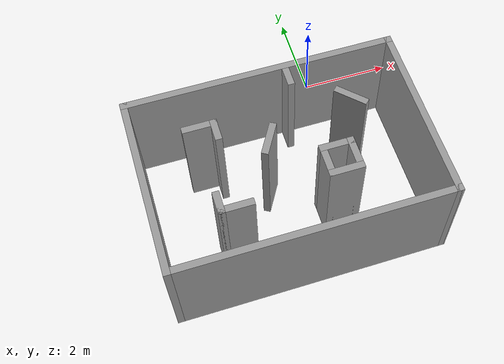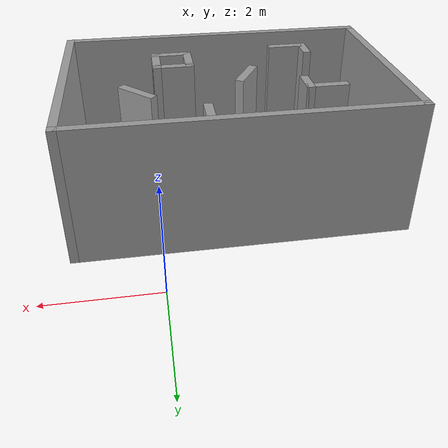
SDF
<?xml version='1.0'?>
<sdf version='1.7'>
  <model name='easy_ground'>
    <pose>-1.445 -2.4675 0 0 -0 0</pose>
    <link name='Wall_0'>
      <collision name='Wall_0_Collision'>
        <geometry>
          <box>
            <size>4 0.15 2.5</size>
          </box>
        </geometry>
        <pose>0 0 1.25 0 -0 0</pose>
      </collision>
      <visual name='Wall_0_Visual'>
        <pose>0 0 1.25 0 -0 0</pose>
        <geometry>
          <box>
            <size>4 0.15 2.5</size>
          </box>
        </geometry>
        <material>
          <script>
            <uri>file://media/materials/scripts/gazebo.material</uri>
            <name>Gazebo/Grey</name>
          </script>
          <ambient>1 1 1 1</ambient>
        </material>
        <meta>
          <layer>0</layer>
        </meta>
      </visual>
      <pose>-2.925 -0.4675 0 0 -0 -1.5708</pose>
    </link>
    <link name='Wall_1'>
      <collision name='Wall_1_Collision'>
        <geometry>
          <box>
            <size>6 0.15 2.5</size>
          </box>
        </geometry>
        <pose>0 0 1.25 0 -0 0</pose>
      </collision>
      <visual name='Wall_1_Visual'>
        <pose>0 0 1.25 0 -0 0</pose>
        <geometry>
          <box>
            <size>6 0.15 2.5</size>
          </box>
        </geometry>
        <material>
          <script>
            <uri>file://media/materials/scripts/gazebo.material</uri>
            <name>Gazebo/Grey</name>
          </script>
          <ambient>1 1 1 1</ambient>
        </material>
        <meta>
          <layer>0</layer>
        </meta>
      </visual>
      <pose>-0 -2.3925 0 0 -0 0</pose>
    </link>
    <link name='Wall_2'>
      <collision name='Wall_2_Collision'>
        <geometry>
          <box>
            <size>4 0.15 2.5</size>
          </box>
        </geometry>
        <pose>0 0 1.25 0 -0 0</pose>
      </collision>
      <visual name='Wall_2_Visual'>
        <pose>0 0 1.25 0 -0 0</pose>
        <geometry>
          <box>
            <size>4 0.15 2.5</size>
          </box>
        </geometry>
        <material>
          <script>
            <uri>file://media/materials/scripts/gazebo.material</uri>
            <name>Gazebo/Grey</name>
          </script>
          <ambient>1 1 1 1</ambient>
        </material>
        <meta>
          <layer>0</layer>
        </meta>
      </visual>
      <pose>2.925 -0.4675 0 0 -0 1.5708</pose>
    </link>
    <link name='Wall_21'>
      <collision name='Wall_21_Collision'>
        <geometry>
          <box>
            <size>0.5 0.15 2.5</size>
          </box>
        </geometry>
        <pose>0 0 1.25 0 -0 0</pose>
      </collision>
      <visual name='Wall_21_Visual'>
        <pose>0 0 1.25 0 -0 0</pose>
        <geometry>
          <box>
            <size>0.5 0.15 2.5</size>
          </box>
        </geometry>
        <material>
          <script>
            <uri>file://media/materials/scripts/gazebo.material</uri>
            <name>Gazebo/Grey</name>
          </script>
          <ambient>1 1 1 1</ambient>
        </material>
        <meta>
          <layer>0</layer>
        </meta>
      </visual>
      <pose>0.555 1.1925 0 0 -0 -1.5708</pose>
    </link>
    <link name='Wall_25'>
      <collision name='Wall_25_Collision'>
        <geometry>
          <box>
            <size>0.75 0.15 2.5</size>
          </box>
        </geometry>
        <pose>0 0 1.25 0 -0 0</pose>
      </collision>
      <visual name='Wall_25_Visual'>
        <pose>0 0 1.25 0 -0 0</pose>
        <geometry>
          <box>
            <size>0.75 0.15 2.5</size>
          </box>
        </geometry>
        <material>
          <script>
            <uri>file://media/materials/scripts/gazebo.material</uri>
            <name>Gazebo/Grey</name>
          </script>
          <ambient>1 1 1 1</ambient>
        </material>
        <meta>
          <layer>0</layer>
        </meta>
      </visual>
      <pose>0.675 -1.0325 0 0 -0 -1.5708</pose>
    </link>
    <link name='Wall_26'>
      <collision name='Wall_26_Collision'>
        <geometry>
          <box>
            <size>0.75 0.15 2.5</size>
          </box>
        </geometry>
        <pose>0 0 1.25 0 -0 0</pose>
      </collision>
      <visual name='Wall_26_Visual'>
        <pose>0 0 1.25 0 -0 0</pose>
        <geometry>
          <box>
            <size>0.75 0.15 2.5</size>
          </box>
        </geometry>
        <material>
          <script>
            <uri>file://media/materials/scripts/gazebo.material</uri>
            <name>Gazebo/Grey</name>
          </script>
          <ambient>1 1 1 1</ambient>
        </material>
        <meta>
          <layer>0</layer>
        </meta>
      </visual>
      <pose>0.975 -1.3325 0 0 -0 0</pose>
    </link>
    <link name='Wall_27'>
      <collision name='Wall_27_Collision'>
        <geometry>
          <box>
            <size>0.75 0.15 2.5</size>
          </box>
        </geometry>
        <pose>0 0 1.25 0 -0 0</pose>
      </collision>
      <visual name='Wall_27_Visual'>
        <pose>0 0 1.25 0 -0 0</pose>
        <geometry>
          <box>
            <size>0.75 0.15 2.5</size>
          </box>
        </geometry>
        <material>
          <script>
            <uri>file://media/materials/scripts/gazebo.material</uri>
            <name>Gazebo/Grey</name>
          </script>
          <ambient>1 1 1 1</ambient>
        </material>
        <meta>
          <layer>0</layer>
        </meta>
      </visual>
      <pose>1.275 -1.0325 0 0 -0 1.5708</pose>
    </link>
    <link name='Wall_28'>
      <collision name='Wall_28_Collision'>
        <geometry>
          <box>
            <size>0.75 0.15 2.5</size>
          </box>
        </geometry>
        <pose>0 0 1.25 0 -0 0</pose>
      </collision>
      <visual name='Wall_28_Visual'>
        <pose>0 0 1.25 0 -0 0</pose>
        <geometry>
          <box>
            <size>0.75 0.15 2.5</size>
          </box>
        </geometry>
        <material>
          <script>
            <uri>file://media/materials/scripts/gazebo.material</uri>
            <name>Gazebo/Grey</name>
          </script>
          <ambient>1 1 1 1</ambient>
        </material>
        <meta>
          <layer>0</layer>
        </meta>
      </visual>
      <pose>0.975 -0.7325 0 0 -0 3.14159</pose>
    </link>
    <link name='Wall_3'>
      <collision name='Wall_3_Collision'>
        <geometry>
          <box>
            <size>6 0.15 2.5</size>
          </box>
        </geometry>
        <pose>0 0 1.25 0 -0 0</pose>
      </collision>
      <visual name='Wall_3_Visual'>
        <pose>0 0 1.25 0 -0 0</pose>
        <geometry>
          <box>
            <size>6 0.15 2.5</size>
          </box>
        </geometry>
        <material>
          <script>
            <uri>file://media/materials/scripts/gazebo.material</uri>
            <name>Gazebo/Grey</name>
          </script>
          <ambient>1 1 1 1</ambient>
        </material>
        <meta>
          <layer>0</layer>
        </meta>
      </visual>
      <pose>-0 1.4575 0 0 -0 3.14159</pose>
    </link>
    <link name='Wall_30'>
      <collision name='Wall_30_Collision'>
        <geometry>
          <box>
            <size>0.75 0.15 2.5</size>
          </box>
        </geometry>
        <pose>0 0 1.25 0 -0 0</pose>
      </collision>
      <visual name='Wall_30_Visual'>
        <pose>0 0 1.25 0 -0 0</pose>
        <geometry>
          <box>
            <size>0.75 0.15 2.5</size>
          </box>
        </geometry>
        <material>
          <script>
            <uri>file://media/materials/scripts/gazebo.material</uri>
            <name>Gazebo/Grey</name>
          </script>
          <ambient>1 1 1 1</ambient>
        </material>
        <meta>
          <layer>0</layer>
        </meta>
      </visual>
      <pose>1.65713 0.305368 0 0 -0 -0.785398</pose>
    </link>
    <link name='Wall_33'>
      <collision name='Wall_33_Collision'>
        <geometry>
          <box>
            <size>0.75 0.15 2.5</size>
          </box>
        </geometry>
        <pose>0 0 1.25 0 -0 0</pose>
      </collision>
      <visual name='Wall_33_Visual'>
        <pose>0 0 1.25 0 -0 0</pose>
        <geometry>
          <box>
            <size>0.75 0.15 2.5</size>
          </box>
        </geometry>
        <material>
          <script>
            <uri>file://media/materials/scripts/gazebo.material</uri>
            <name>Gazebo/Grey</name>
          </script>
          <ambient>1 1 1 1</ambient>
        </material>
        <meta>
          <layer>0</layer>
        </meta>
      </visual>
      <pose>-1.555 0.5075 0 0 -0 0</pose>
    </link>
    <link name='Wall_34'>
      <collision name='Wall_34_Collision'>
        <geometry>
          <box>
            <size>0.5 0.15 2.5</size>
          </box>
        </geometry>
        <pose>0 0 1.25 0 -0 0</pose>
      </collision>
      <visual name='Wall_34_Visual'>
        <pose>0 0 1.25 0 -0 0</pose>
        <geometry>
          <box>
            <size>0.5 0.15 2.5</size>
          </box>
        </geometry>
        <material>
          <script>
            <uri>file://media/materials/scripts/gazebo.material</uri>
            <name>Gazebo/Grey</name>
          </script>
          <ambient>1 1 1 1</ambient>
        </material>
        <meta>
          <layer>0</layer>
        </meta>
      </visual>
      <pose>-1.255 0.3325 0 0 -0 -1.5708</pose>
    </link>
    <link name='Wall_36'>
      <collision name='Wall_36_Collision'>
        <geometry>
          <box>
            <size>0.75 0.15 2.5</size>
          </box>
        </geometry>
        <pose>0 0 1.25 0 -0 0</pose>
      </collision>
      <visual name='Wall_36_Visual'>
        <pose>0 0 1.25 0 -0 0</pose>
        <geometry>
          <box>
            <size>0.75 0.15 2.5</size>
          </box>
        </geometry>
        <material>
          <script>
            <uri>file://media/materials/scripts/gazebo.material</uri>
            <name>Gazebo/Grey</name>
          </script>
          <ambient>1 1 1 1</ambient>
        </material>
        <meta>
          <layer>0</layer>
        </meta>
      </visual>
      <pose>-0.285 -0.192692 0 0 -0 1.0472</pose>
    </link>
    <link name='Wall_39'>
      <collision name='Wall_39_Collision'>
        <geometry>
          <box>
            <size>0.5 0.15 2.5</size>
          </box>
        </geometry>
        <pose>0 0 1.25 0 -0 0</pose>
      </collision>
      <visual name='Wall_39_Visual'>
        <pose>0 0 1.25 0 -0 0</pose>
        <geometry>
          <box>
            <size>0.5 0.15 2.5</size>
          </box>
        </geometry>
        <material>
          <script>
            <uri>file://media/materials/scripts/gazebo.material</uri>
            <name>Gazebo/Grey</name>
          </script>
          <ambient>1 1 1 1</ambient>
        </material>
        <meta>
          <layer>0</layer>
        </meta>
      </visual>
      <pose>-1.635 -1.2975 0 0 -0 -1.5708</pose>
    </link>
    <link name='Wall_40'>
      <collision name='Wall_40_Collision'>
        <geometry>
          <box>
            <size>0.75 0.15 2.5</size>
          </box>
        </geometry>
        <pose>0 0 1.25 0 -0 0</pose>
      </collision>
      <visual name='Wall_40_Visual'>
        <pose>0 0 1.25 0 -0 0</pose>
        <geometry>
          <box>
            <size>0.75 0.15 2.5</size>
          </box>
        </geometry>
        <material>
          <script>
            <uri>file://media/materials/scripts/gazebo.material</uri>
            <name>Gazebo/Grey</name>
          </script>
          <ambient>1 1 1 1</ambient>
        </material>
        <meta>
          <layer>0</layer>
        </meta>
      </visual>
      <pose>-1.335 -1.4725 0 0 -0 0</pose>
    </link>
    <static>1</static>
  </model>
</sdf>
